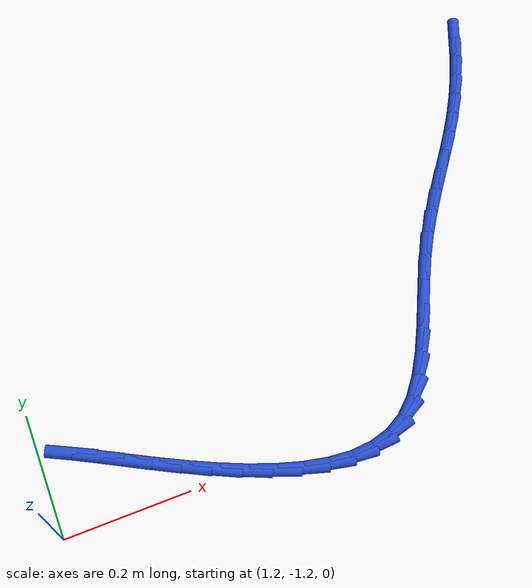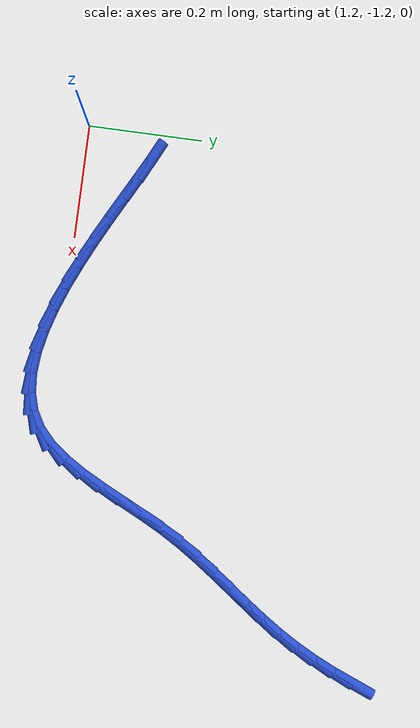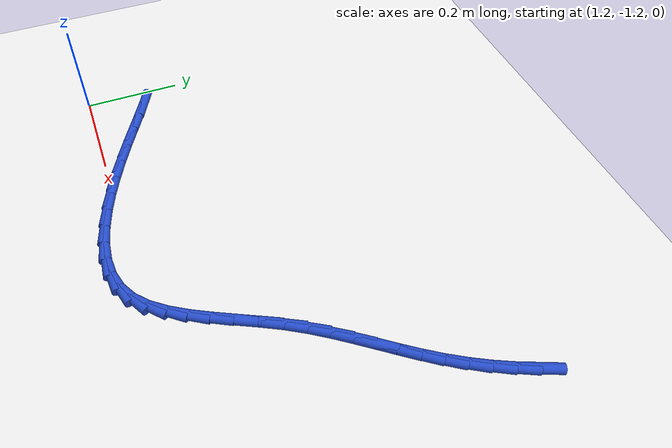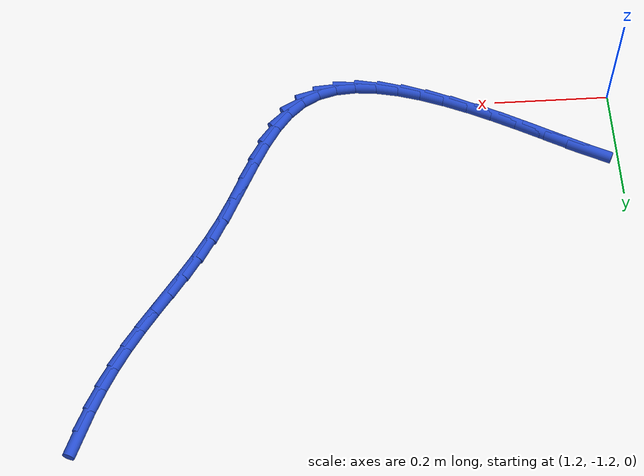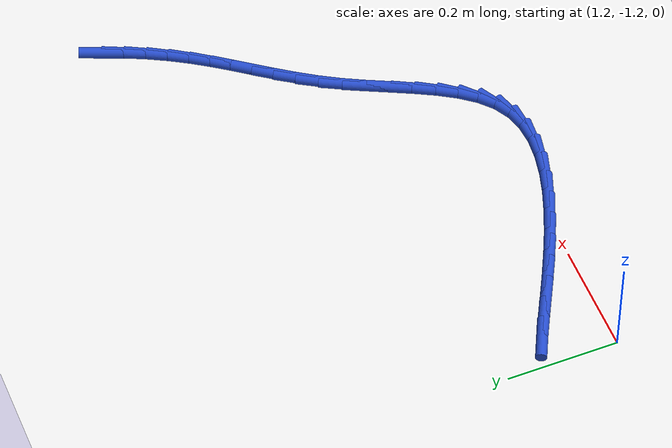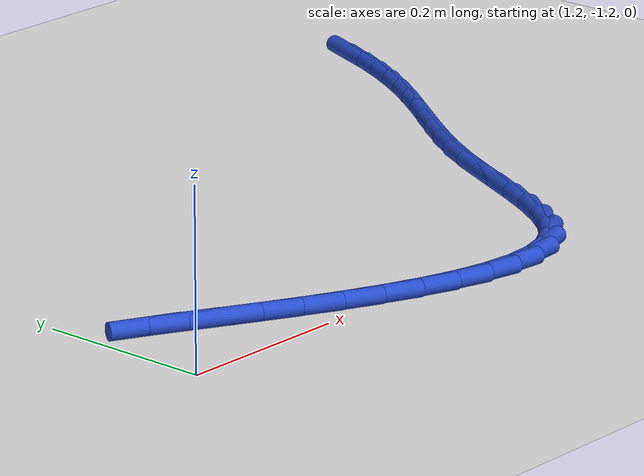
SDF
<sdf version="1.6">
 <world name="default">
  <model name="ground_plane">
   <static>1</static>
   <link name="link">
    <collision name="collision">
     <geometry><plane><normal>0 0 1</normal><size>100 100</size></plane></geometry>
     <surface><friction><ode><mu>100</mu><mu2>50</mu2></ode></friction></surface>
    </collision>
    <visual name="visual">
     <cast_shadows>0</cast_shadows>
     <geometry><plane><normal>0 0 1</normal><size>100 100</size></plane></geometry>
     <material>
      <script><uri>file://media/materials/scripts/gazebo.material</uri><name>Gazebo/WhiteGlow</name></script>
     </material>
    </visual>
   </link>
  </model>
  <model name="line">
   <link name="link_110">
    <pose>2.111066907450346 -0.6095990954987757 0.01 0 1.57 1.1876027090139314</pose>
    <collision name="collision">
     <geometry><cylinder><radius>0.01</radius><length>0.08</length></cylinder></geometry>
    </collision>
    <visual name="visual">
     <material>
      <script><name>Gazebo/Blue</name><uri>file://media/materials/scripts/gazebo.material</uri></script>
     </material>
     <geometry><cylinder><radius>0.01</radius><length>0.08</length></cylinder></geometry>
    </visual>
   </link>
   <link name="link_111">
    <pose>2.0960973662772706 -0.6467332499492205 0.01 0 1.57 1.1364844375667231</pose>
    <collision name="collision">
     <geometry><cylinder><radius>0.01</radius><length>0.08</length></cylinder></geometry>
    </collision>
    <visual name="visual">
     <material>
      <script><name>Gazebo/Blue</name><uri>file://media/materials/scripts/gazebo.material</uri></script>
     </material>
     <geometry><cylinder><radius>0.01</radius><length>0.08</length></cylinder></geometry>
    </visual>
   </link>
   <link name="link_112">
    <pose>2.0793608451921592 -0.6828149857705667 0.01 0 1.57 1.0854679629178265</pose>
    <collision name="collision">
     <geometry><cylinder><radius>0.01</radius><length>0.08</length></cylinder></geometry>
    </collision>
    <visual name="visual">
     <material>
      <script><name>Gazebo/Blue</name><uri>file://media/materials/scripts/gazebo.material</uri></script>
     </material>
     <geometry><cylinder><radius>0.01</radius><length>0.08</length></cylinder></geometry>
    </visual>
   </link>
   <link name="link_113">
    <pose>2.0609669418299355 -0.7176914050932038 0.01 0 1.57 1.0341008054793763</pose>
    <collision name="collision">
     <geometry><cylinder><radius>0.01</radius><length>0.08</length></cylinder></geometry>
    </collision>
    <visual name="visual">
     <material>
      <script><name>Gazebo/Blue</name><uri>file://media/materials/scripts/gazebo.material</uri></script>
     </material>
     <geometry><cylinder><radius>0.01</radius><length>0.08</length></cylinder></geometry>
    </visual>
   </link>
   <link name="link_114">
    <pose>2.041025314851731 -0.7512097495768297 0.01 0 1.57 0.98572817861473</pose>
    <collision name="collision">
     <geometry><cylinder><radius>0.01</radius><length>0.08</length></cylinder></geometry>
    </collision>
    <visual name="visual">
     <material>
      <script><name>Gazebo/Blue</name><uri>file://media/materials/scripts/gazebo.material</uri></script>
     </material>
     <geometry><cylinder><radius>0.01</radius><length>0.08</length></cylinder></geometry>
    </visual>
   </link>
   <link name="link_115">
    <pose>2.019715915061903 -0.7833779756656338 0.01 0 1.57 0.9518782623289617</pose>
    <collision name="collision">
     <geometry><cylinder><radius>0.01</radius><length>0.08</length></cylinder></geometry>
    </collision>
    <visual name="visual">
     <material>
      <script><name>Gazebo/Blue</name><uri>file://media/materials/scripts/gazebo.material</uri></script>
     </material>
     <geometry><cylinder><radius>0.01</radius><length>0.08</length></cylinder></geometry>
    </visual>
   </link>
   <link name="link_116">
    <pose>1.9974243316164229 -0.814674207902956 0.01 0 1.57 0.935401766246782</pose>
    <collision name="collision">
     <geometry><cylinder><radius>0.01</radius><length>0.08</length></cylinder></geometry>
    </collision>
    <visual name="visual">
     <material>
      <script><name>Gazebo/Blue</name><uri>file://media/materials/scripts/gazebo.material</uri></script>
     </material>
     <geometry><cylinder><radius>0.01</radius><length>0.08</length></cylinder></geometry>
    </visual>
   </link>
   <link name="link_117">
    <pose>1.9745735598272187 -0.8456620956435411 0.01 0 1.57 0.936482217002242</pose>
    <collision name="collision">
     <geometry><cylinder><radius>0.01</radius><length>0.08</length></cylinder></geometry>
    </collision>
    <visual name="visual">
     <material>
      <script><name>Gazebo/Blue</name><uri>file://media/materials/scripts/gazebo.material</uri></script>
     </material>
     <geometry><cylinder><radius>0.01</radius><length>0.08</length></cylinder></geometry>
    </visual>
   </link>
   <link name="link_118">
    <pose>1.9515865950062146 -0.8769052882421335 0.01 0 1.57 0.9547180115702175</pose>
    <collision name="collision">
     <geometry><cylinder><radius>0.01</radius><length>0.08</length></cylinder></geometry>
    </collision>
    <visual name="visual">
     <material>
      <script><name>Gazebo/Blue</name><uri>file://media/materials/scripts/gazebo.material</uri></script>
     </material>
     <geometry><cylinder><radius>0.01</radius><length>0.08</length></cylinder></geometry>
    </visual>
   </link>
   <link name="link_119">
    <pose>1.9288864324653359 -0.9089674350534793 0.01 0 1.57 0.9891575359761321</pose>
    <collision name="collision">
     <geometry><cylinder><radius>0.01</radius><length>0.08</length></cylinder></geometry>
    </collision>
    <visual name="visual">
     <material>
      <script><name>Gazebo/Blue</name><uri>file://media/materials/scripts/gazebo.material</uri></script>
     </material>
     <geometry><cylinder><radius>0.01</radius><length>0.08</length></cylinder></geometry>
    </visual>
   </link>
   <link name="link_120">
    <pose>1.9068960675165068 -0.9424121854323219 0.01 0 1.57 1.0382461234205989</pose>
    <collision name="collision">
     <geometry><cylinder><radius>0.01</radius><length>0.08</length></cylinder></geometry>
    </collision>
    <visual name="visual">
     <material>
      <script><name>Gazebo/Blue</name><uri>file://media/materials/scripts/gazebo.material</uri></script>
     </material>
     <geometry><cylinder><radius>0.01</radius><length>0.08</length></cylinder></geometry>
    </visual>
   </link>
   <link name="link_121">
    <pose>1.8860384760806475 -0.9778031554590352 0.01 0 1.57 1.091222235261383</pose>
    <collision name="collision">
     <geometry><cylinder><radius>0.01</radius><length>0.08</length></cylinder></geometry>
    </collision>
    <visual name="visual">
     <material>
      <script><name>Gazebo/Blue</name><uri>file://media/materials/scripts/gazebo.material</uri></script>
     </material>
     <geometry><cylinder><radius>0.01</radius><length>0.08</length></cylinder></geometry>
    </visual>
   </link>
   <link name="link_122">
    <pose>1.8665203951622402 -1.0153329018493376 0.01 0 1.57 1.1188707102092927</pose>
    <collision name="collision">
     <geometry><cylinder><radius>0.01</radius><length>0.08</length></cylinder></geometry>
    </collision>
    <visual name="visual">
     <material>
      <script><name>Gazebo/Blue</name><uri>file://media/materials/scripts/gazebo.material</uri></script>
     </material>
     <geometry><cylinder><radius>0.01</radius><length>0.08</length></cylinder></geometry>
    </visual>
   </link>
   <link name="link_123">
    <pose>1.8477967729229068 -1.0539039346660164 0.01 0 1.57 1.1172389052623157</pose>
    <collision name="collision">
     <geometry><cylinder><radius>0.01</radius><length>0.08</length></cylinder></geometry>
    </collision>
    <visual name="visual">
     <material>
      <script><name>Gazebo/Blue</name><uri>file://media/materials/scripts/gazebo.material</uri></script>
     </material>
     <geometry><cylinder><radius>0.01</radius><length>0.08</length></cylinder></geometry>
    </visual>
   </link>
   <link name="link_124">
    <pose>1.8291592837158082 -1.0921385911119934 0.01 0 1.57 1.0854974264438395</pose>
    <collision name="collision">
     <geometry><cylinder><radius>0.01</radius><length>0.08</length></cylinder></geometry>
    </collision>
    <visual name="visual">
     <material>
      <script><name>Gazebo/Blue</name><uri>file://media/materials/scripts/gazebo.material</uri></script>
     </material>
     <geometry><cylinder><radius>0.01</radius><length>0.08</length></cylinder></geometry>
    </visual>
   </link>
   <link name="link_125">
    <pose>1.8098996018941043 -1.1286592083901903 0.01 0 1.57 1.0187387419506466</pose>
    <collision name="collision">
     <geometry><cylinder><radius>0.01</radius><length>0.08</length></cylinder></geometry>
    </collision>
    <visual name="visual">
     <material>
      <script><name>Gazebo/Blue</name><uri>file://media/materials/scripts/gazebo.material</uri></script>
     </material>
     <geometry><cylinder><radius>0.01</radius><length>0.08</length></cylinder></geometry>
    </visual>
   </link>
   <link name="link_126">
    <pose>1.7893094018109545 -1.1620881237035303 0.01 0 1.57 0.9074990959814817</pose>
    <collision name="collision">
     <geometry><cylinder><radius>0.01</radius><length>0.08</length></cylinder></geometry>
    </collision>
    <visual name="visual">
     <material>
      <script><name>Gazebo/Blue</name><uri>file://media/materials/scripts/gazebo.material</uri></script>
     </material>
     <geometry><cylinder><radius>0.01</radius><length>0.08</length></cylinder></geometry>
    </visual>
   </link>
   <link name="link_127">
    <pose>1.7666803578195205 -1.191047674254935 0.01 0 1.57 0.7387471613571676</pose>
    <collision name="collision">
     <geometry><cylinder><radius>0.01</radius><length>0.08</length></cylinder></geometry>
    </collision>
    <visual name="visual">
     <material>
      <script><name>Gazebo/Blue</name><uri>file://media/materials/scripts/gazebo.material</uri></script>
     </material>
     <geometry><cylinder><radius>0.01</radius><length>0.08</length></cylinder></geometry>
    </visual>
   </link>
   <link name="link_128">
    <pose>1.7413041442729613 -1.2141601972473262 0.01 0 1.57 0.5074875968846824</pose>
    <collision name="collision">
     <geometry><cylinder><radius>0.01</radius><length>0.08</length></cylinder></geometry>
    </collision>
    <visual name="visual">
     <material>
      <script><name>Gazebo/Blue</name><uri>file://media/materials/scripts/gazebo.material</uri></script>
     </material>
     <geometry><cylinder><radius>0.01</radius><length>0.08</length></cylinder></geometry>
    </visual>
   </link>
   <link name="link_129">
    <pose>1.712534564519713 -1.230157949252471 0.01 0 1.57 0.26913330528874707</pose>
    <collision name="collision">
     <geometry><cylinder><radius>0.01</radius><length>0.08</length></cylinder></geometry>
    </collision>
    <visual name="visual">
     <material>
      <script><name>Gazebo/Blue</name><uri>file://media/materials/scripts/gazebo.material</uri></script>
     </material>
     <geometry><cylinder><radius>0.01</radius><length>0.08</length></cylinder></geometry>
    </visual>
   </link>
   <link name="link_130">
    <pose>1.680426804382635 -1.2390140811873034 0.01 0 1.57 0.07058910419257955</pose>
    <collision name="collision">
     <geometry><cylinder><radius>0.01</radius><length>0.08</length></cylinder></geometry>
    </collision>
    <visual name="visual">
     <material>
      <script><name>Gazebo/Blue</name><uri>file://media/materials/scripts/gazebo.material</uri></script>
     </material>
     <geometry><cylinder><radius>0.01</radius><length>0.08</length></cylinder></geometry>
    </visual>
   </link>
   <link name="link_131">
    <pose>1.6454788391176731 -1.2414851323818614 0.01 0 1.57 -0.08415994811667223</pose>
    <collision name="collision">
     <geometry><cylinder><radius>0.01</radius><length>0.08</length></cylinder></geometry>
    </collision>
    <visual name="visual">
     <material>
      <script><name>Gazebo/Blue</name><uri>file://media/materials/scripts/gazebo.material</uri></script>
     </material>
     <geometry><cylinder><radius>0.01</radius><length>0.08</length></cylinder></geometry>
    </visual>
   </link>
   <link name="link_132">
    <pose>1.6081955993418593 -1.23833994767502 0.01 0 1.57 -0.201567736052156</pose>
    <collision name="collision">
     <geometry><cylinder><radius>0.01</radius><length>0.08</length></cylinder></geometry>
    </collision>
    <visual name="visual">
     <material>
      <script><name>Gazebo/Blue</name><uri>file://media/materials/scripts/gazebo.material</uri></script>
     </material>
     <geometry><cylinder><radius>0.01</radius><length>0.08</length></cylinder></geometry>
    </visual>
   </link>
   <link name="link_133">
    <pose>1.5690820156722216 -1.2303473719056535 0.01 0 1.57 -0.29008192851861475</pose>
    <collision name="collision">
     <geometry><cylinder><radius>0.01</radius><length>0.08</length></cylinder></geometry>
    </collision>
    <visual name="visual">
     <material>
      <script><name>Gazebo/Blue</name><uri>file://media/materials/scripts/gazebo.material</uri></script>
     </material>
     <geometry><cylinder><radius>0.01</radius><length>0.08</length></cylinder></geometry>
    </visual>
   </link>
   <link name="link_134">
    <pose>1.5286430187257904 -1.2182762499126363 0.01 0 1.57 -0.3568253878121967</pose>
    <collision name="collision">
     <geometry><cylinder><radius>0.01</radius><length>0.08</length></cylinder></geometry>
    </collision>
    <visual name="visual">
     <material>
      <script><name>Gazebo/Blue</name><uri>file://media/materials/scripts/gazebo.material</uri></script>
     </material>
     <geometry><cylinder><radius>0.01</radius><length>0.08</length></cylinder></geometry>
    </visual>
   </link>
   <link name="link_135">
    <pose>1.4873835391195969 -1.2028954265348428 0.01 0 1.57 -0.40699933839638996</pose>
    <collision name="collision">
     <geometry><cylinder><radius>0.01</radius><length>0.08</length></cylinder></geometry>
    </collision>
    <visual name="visual">
     <material>
      <script><name>Gazebo/Blue</name><uri>file://media/materials/scripts/gazebo.material</uri></script>
     </material>
     <geometry><cylinder><radius>0.01</radius><length>0.08</length></cylinder></geometry>
    </visual>
   </link>
   <link name="link_136">
    <pose>1.4458085074706697 -1.1849737466111478 0.01 0 1.57 -0.444148105928895</pose>
    <collision name="collision">
     <geometry><cylinder><radius>0.01</radius><length>0.08</length></cylinder></geometry>
    </collision>
    <visual name="visual">
     <material>
      <script><name>Gazebo/Blue</name><uri>file://media/materials/scripts/gazebo.material</uri></script>
     </material>
     <geometry><cylinder><radius>0.01</radius><length>0.08</length></cylinder></geometry>
    </visual>
   </link>
   <link name="link_137">
    <pose>1.40442285439604 -1.1652800549804252 0.01 0 1.57 -0.47052814536918697</pose>
    <collision name="collision">
     <geometry><cylinder><radius>0.01</radius><length>0.08</length></cylinder></geometry>
    </collision>
    <visual name="visual">
     <material>
      <script><name>Gazebo/Blue</name><uri>file://media/materials/scripts/gazebo.material</uri></script>
     </material>
     <geometry><cylinder><radius>0.01</radius><length>0.08</length></cylinder></geometry>
    </visual>
   </link>
   <link name="link_138">
    <pose>1.3637315105127368 -1.14458319648155 0.01 0 1.57 -0.4873490939757772</pose>
    <collision name="collision">
     <geometry><cylinder><radius>0.01</radius><length>0.08</length></cylinder></geometry>
    </collision>
    <visual name="visual">
     <material>
      <script><name>Gazebo/Blue</name><uri>file://media/materials/scripts/gazebo.material</uri></script>
     </material>
     <geometry><cylinder><radius>0.01</radius><length>0.08</length></cylinder></geometry>
    </visual>
   </link>
   <link name="link_139">
    <pose>1.3242364539271214 -1.1236512963542766 0.01 0 1.57 -0.4931951814528522</pose>
    <collision name="collision">
     <geometry><cylinder><radius>0.01</radius><length>0.08</length></cylinder></geometry>
    </collision>
    <visual name="visual">
     <material>
      <script><name>Gazebo/Blue</name><uri>file://media/materials/scripts/gazebo.material</uri></script>
     </material>
     <geometry><cylinder><radius>0.01</radius><length>0.08</length></cylinder></geometry>
    </visual>
   </link>
   <link name="link_140">
    <pose>1.2861569142352416 -1.1031835671054186 0.01 0 1.57 -0.48400948316598563</pose>
    <collision name="collision">
     <geometry><cylinder><radius>0.01</radius><length>0.08</length></cylinder></geometry>
    </collision>
    <visual name="visual">
     <material>
      <script><name>Gazebo/Blue</name><uri>file://media/materials/scripts/gazebo.material</uri></script>
     </material>
     <geometry><cylinder><radius>0.01</radius><length>0.08</length></cylinder></geometry>
    </visual>
   </link>
   <link name="link_141">
    <pose>1.2491990874833299 -1.0837541824079202 0.01 0 1.57 -0.45783864327833607</pose>
    <collision name="collision">
     <geometry><cylinder><radius>0.01</radius><length>0.08</length></cylinder></geometry>
    </collision>
    <visual name="visual">
     <material>
      <script><name>Gazebo/Blue</name><uri>file://media/materials/scripts/gazebo.material</uri></script>
     </material>
     <geometry><cylinder><radius>0.01</radius><length>0.08</length></cylinder></geometry>
    </visual>
   </link>
  </model>
 </world>
</sdf>
